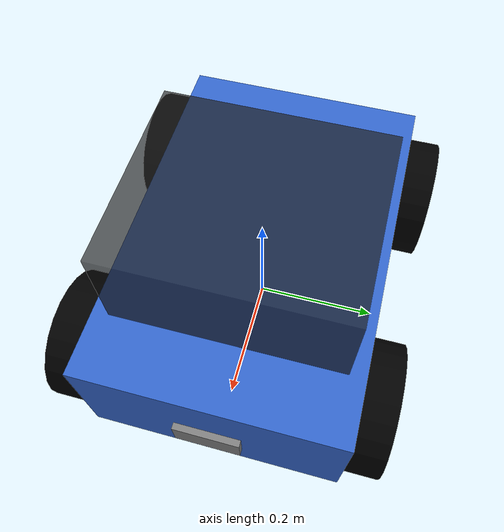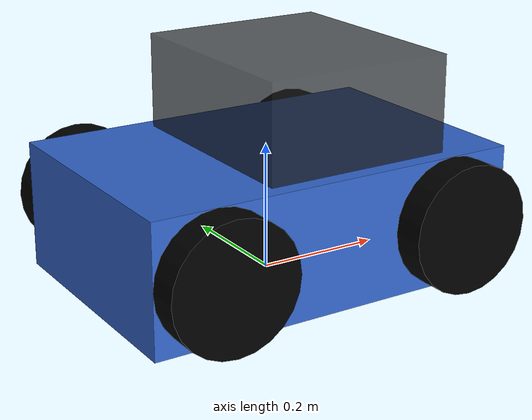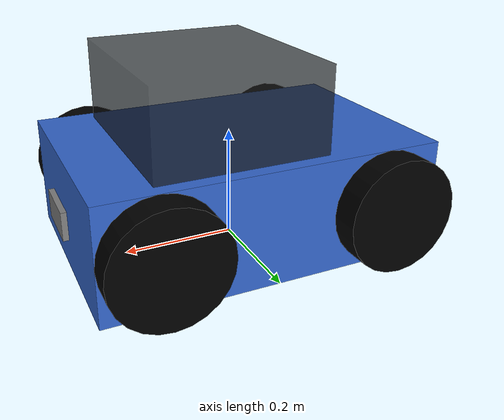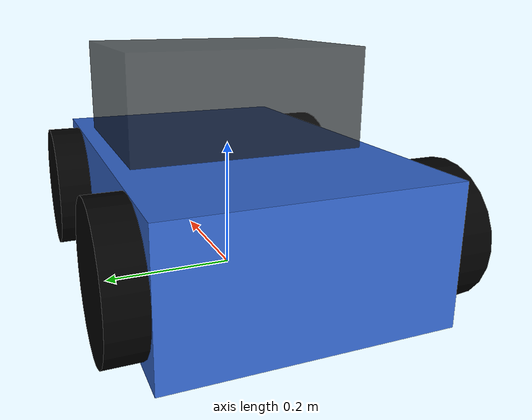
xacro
<?xml version="1.0"?>
<robot name="my_robot" xmlns:xacro="http://www.ros.org/wiki/xacro">

  <xacro:property name="PI" value="3.1415926535897931"/>

  <xacro:property name="base_len" value="0.6" />
  <xacro:property name="base_width" value="0.4" />
  <xacro:property name="base_height" value="0.2" />
  <xacro:property name="base_mass" value="10.0" />

  <xacro:property name="cabin_len" value="0.3" />
  <xacro:property name="cabin_width" value="0.35" />
  <xacro:property name="cabin_height" value="0.15" />
  <xacro:property name="cabin_mass" value="5.0" />

  <xacro:property name="wheel_radius" value="0.1" />
  <xacro:property name="wheel_length" value="0.05" />
  <xacro:property name="wheel_mass" value="1.0" />

  <xacro:property name="camera_length" value="0.01" />
  <xacro:property name="camera_width" value="0.1" />
  <xacro:property name="camera_height" value="0.05" />

  <xacro:property name="wheel_x_offset" value="0.2" /> <xacro:property name="wheel_y_offset" value="${base_width/2 + wheel_length/2}" /> <xacro:property name="wheel_z_offset" value="0.0" /> <xacro:macro name="box_inertial" params="m x y z">
    <inertial>
      <mass value="${m}" />
      <inertia ixx="${(m/12.0) * (y*y + z*z)}" ixy="0.0" ixz="0.0"
               iyy="${(m/12.0) * (x*x + z*z)}" iyz="0.0"
               izz="${(m/12.0) * (x*x + y*y)}"/>
    </inertial>
  </xacro:macro>

  <xacro:macro name="cylinder_inertial" params="m r h">
    <inertial>
      <mass value="${m}"/>
      <origin rpy="0 0 0" xyz="0 0 0"/>
      <inertia ixx="${(m/12.0) * (3*r*r + h*h)}" ixy="0.0" ixz="0.0"
               iyy="${(m/2.0) * (r*r)}" iyz="0.0"
               izz="${(m/12.0) * (3*r*r + h*h)}"/>
    </inertial>
  </xacro:macro>

  <xacro:macro name="wheel" params="prefix parent *origin">
    <link name="wheel_${prefix}">
      <visual>
        <geometry>
          <cylinder radius="${wheel_radius}" length="${wheel_length}"/>
        </geometry>
        <origin xyz="0 0 0" rpy="${PI/2} 0 0"/>
        <material name="black"/>
      </visual>
      <collision>
        <geometry>
          <cylinder radius="${wheel_radius}" length="${wheel_length}"/>
        </geometry>
        <origin xyz="0 0 0" rpy="${PI/2} 0 0"/>
        <surface>
            <friction>
                <ode>
                    <mu>0.9</mu>
                    <mu2>0.9</mu2>
                </ode>
            </friction>
        </surface>
      </collision>
      <xacro:cylinder_inertial m="${wheel_mass}" r="${wheel_radius}" h="${wheel_length}"/>
    </link>
    <joint name="wheel_${prefix}_joint" type="continuous">
      <parent link="${parent}"/>
      <child link="wheel_${prefix}"/>
      <xacro:insert_block name="origin"/>
      <axis xyz="0 1 0"/>
    </joint>
    <gazebo reference="wheel_${prefix}">
        <material>Gazebo/Black</material>
    </gazebo>
  </xacro:macro>

  <material name="blue">
    <color rgba="0.2 0.4 0.8 1.0" />
  </material>

  <material name="black">
    <color rgba="0.0 0.0 0.0 1.0" />
  </material>

  <material name="window_black">
    <color rgba="0.1 0.1 0.1 0.7" />
  </material>

  <material name="Grey">
    <color rgba="0.5 0.5 0.5 1.0" />
  </material>

  <link name="base_footprint"/>

  <link name="base_link">
    <visual>
      <geometry>
        <box size="${base_len} ${base_width} ${base_height}" />
      </geometry>
      <material name="blue"/>
    </visual>
    <collision>
      <geometry>
        <box size="${base_len} ${base_width} ${base_height}" />
      </geometry>
    </collision>
    <xacro:box_inertial m="${base_mass}" x="${base_len}" y="${base_width}" z="${base_height}" />
  </link>
  <gazebo reference="base_link">
    <material>Gazebo/Blue</material>
  </gazebo>

  <link name="cabin_link">
      <visual>
          <geometry>
              <box size="${cabin_len} ${cabin_width} ${cabin_height}" />
          </geometry>
          <material name="window_black"/>
      </visual>
      <collision>
          <geometry>
              <box size="${cabin_len} ${cabin_width} ${cabin_height}" />
          </geometry>
      </collision>
      <xacro:box_inertial m="${cabin_mass}" x="${cabin_len}" y="${cabin_width}" z="${cabin_height}" />
  </link>
  <gazebo reference="cabin_link">
      <material>Gazebo/DarkGrey</material>
      <transparent>true</transparent>
  </gazebo>

<link name = "camera_link">

<visual>
<geometry>
<box size = "${camera_length} ${camera_width} ${camera_height}"/>
</geometry>
  <material name="Grey" />
</visual>

<collision>
<geometry>
    <box size= "${camera_length} ${camera_width} ${camera_height}" />
</geometry>
</collision>
<xacro:box_inertial m="0.5" x="${camera_length}" y="${camera_width}" z="${camera_height}" />
</link>

<link name="camera_link_optical" />

    <joint name="camera_optical_joint" type="fixed">
        <origin xyz="0 0 0" rpy="${-pi/2} 0 ${-pi/2}"/>
        <parent link="camera_link"/>
        <child link="camera_link_optical"/>
    </joint>

    <gazebo reference="camera_link">
        <sensor name="camera" type="camera">
            <camera>
                <horizontal_fov>1.3962634</horizontal_fov>
                <image>
                    <width>640</width>
                    <height>480</height>
                    <format>R8G8B8</format>
                </image>
                <clip>
                    <near>0.1</near>
                    <far>15</far>
                </clip>
                <noise>
                    <type>gaussian</type>
                    <mean>0.0</mean>
                    <stddev>0.007</stddev>
                </noise>
                <optical_frame_id>camera_link_optical</optical_frame_id>
                <camera_info_topic>camera/camera_info</camera_info_topic>
            </camera>
            <always_on>1</always_on>
            <update_rate>20</update_rate>
            <visualize>true</visualize>
            <topic>camera/image_raw</topic>
        </sensor>
    </gazebo>

  <joint name="base_footprint_joint" type="fixed">
    <parent link="base_footprint" />
    <child link="base_link" />
    <origin xyz="0 0 ${wheel_radius}" rpy="0 0 0" />
  </joint>

  <joint name="cabin_joint" type="fixed">
      <parent link="base_link" />
      <child link="cabin_link" />
      <origin xyz="${0.05} 0 ${base_height/2 + cabin_height/2}" rpy="0 0 0" />
  </joint>

  <joint name ="base_camera_joint" type = "fixed">
  <parent link="base_link"/>
  <child link="camera_link"/>
  <origin xyz = "0.31 0 0" rpy = "0 0 0"/>
  </joint>

  <xacro:wheel prefix="front_left" parent="base_link">
    <origin xyz="${wheel_x_offset} ${wheel_y_offset} ${wheel_z_offset}" rpy="0 0 0" />
  </xacro:wheel>
  <xacro:wheel prefix="front_right" parent="base_link">
    <origin xyz="${wheel_x_offset} -${wheel_y_offset} ${wheel_z_offset}" rpy="0 0 0" />
  </xacro:wheel>
  <xacro:wheel prefix="back_left" parent="base_link">
    <origin xyz="-${wheel_x_offset} ${wheel_y_offset} ${wheel_z_offset}" rpy="0 0 0" />
  </xacro:wheel>
  <xacro:wheel prefix="back_right" parent="base_link">
    <origin xyz="-${wheel_x_offset} -${wheel_y_offset} ${wheel_z_offset}" rpy="0 0 0" />
  </xacro:wheel>

  <gazebo>
    <plugin filename="gz-sim-diff-drive-system" name="gz::sim::systems::DiffDrive">
      <left_joint>wheel_front_left_joint</left_joint>
      <left_joint>wheel_back_left_joint</left_joint>
      <right_joint>wheel_front_right_joint</right_joint>
      <right_joint>wheel_back_right_joint</right_joint>
      <wheel_separation>${2*wheel_y_offset}</wheel_separation>
      <wheel_radius>${wheel_radius}</wheel_radius>
      <odom_topic>odom</odom_topic>
      <topic>/model/my_robot/cmd_vel</topic>
      <frame_id>odom</frame_id>
      <child_frame_id>base_footprint</child_frame_id>
      <update_rate>50</update_rate>
    </plugin>
  </gazebo>
  <gazebo>
    <plugin filename="gz-sim-joint-state-publisher-system" name="gz::sim::systems::JointStatePublisher">
      <joint_name>wheel_back_left_joint</joint_name>
      <joint_name>wheel_back_right_joint</joint_name>
      <joint_name>wheel_front_left_joint</joint_name>
      <joint_name>wheel_front_right_joint</joint_name>
    </plugin>
  </gazebo>

</robot>
